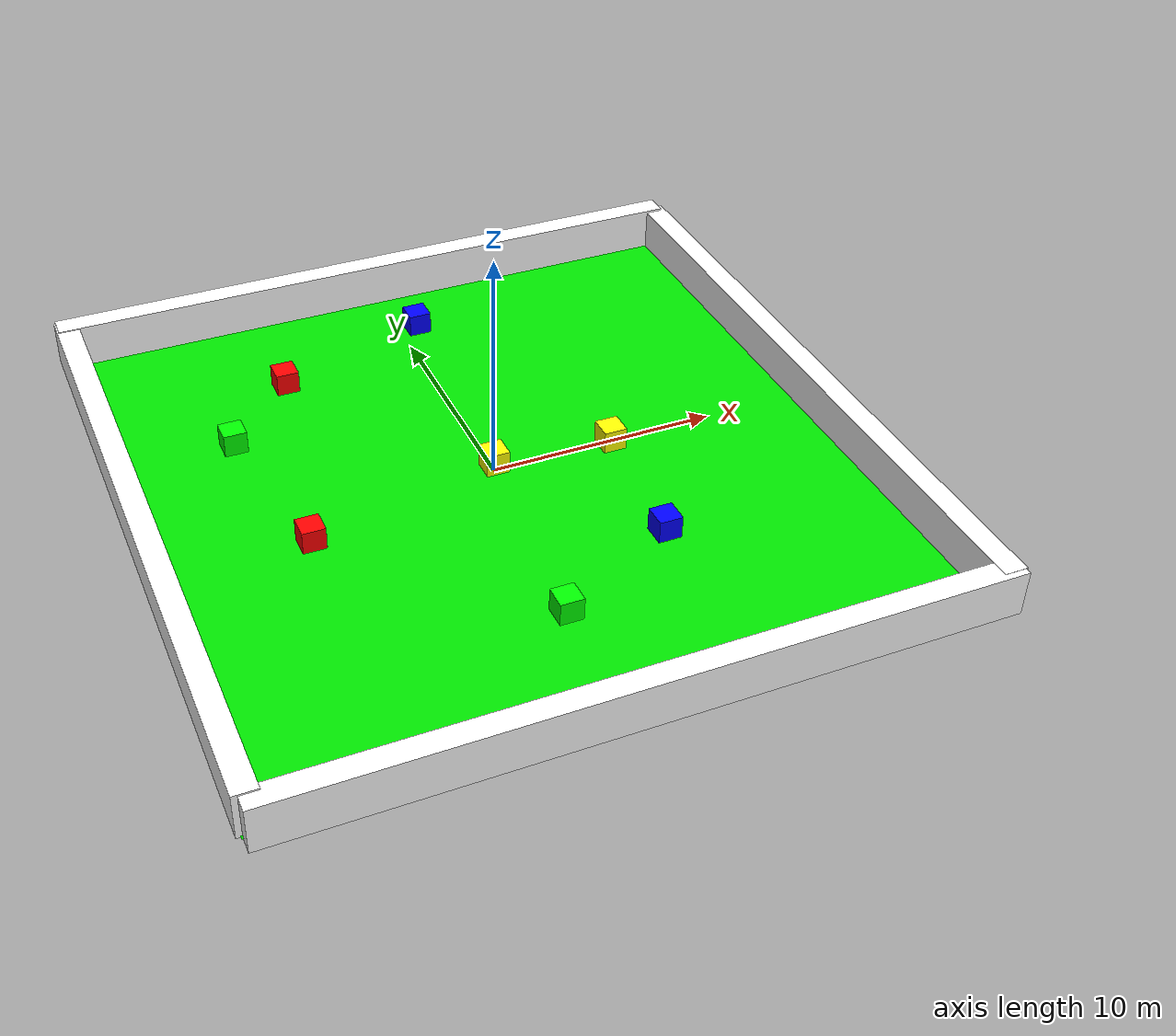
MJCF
<mujoco>
  <worldbody>
    <light diffuse=".5 .5 .5" pos="0 0 5" dir="0 0 -1" />
    <body pos="0 0 0" name="">
      <geom type="plane" size="15 15 3.330669E-16" euler="0 0 0" rgba="0 .9 0 1" />
    </body>
    <body pos="-0.0922308 14.83303 0.9230537" name="">
      <geom type="box" size="15 0.5 1" euler="0 0 0" rgba="255 255 255 1" name="border1" />
    </body>
    <body pos="0.06812 -15.01091 0.8197746" name="">
      <geom type="box" size="15 0.5 1" euler="0 0 0" rgba="255 255 255 1" name="border2"/>
    </body>
    <body pos="14.64551 -0.243706 0.8301067" name="">
      <geom type="box" size="0.5 15 1" euler="0 0 0" rgba="255 255 255 1" name="border3"/>
    </body>
    <body pos="-14.66974 0.1684961 0.885354" name="">
      <geom type="box" size="0.5 15 1" euler="0 0 0" rgba="255 255 255 1" name="border4"/>
    </body>
    <body pos="0 0 0.6168118" name="agent_1">
      <joint type="free" name="agent_1_freeJoint" />
      <camera name="agent_1_camera" pos="1 0 0" euler="90 0 0"/>
      <geom type="box" size="0.5 0.5 0.5" euler="0 0 0" rgba="255 255 0 1" name="agent1_geom" />
    </body>
    <body pos="5.169559 -0.371155 0.6309223" name="agent_2">
      <joint type="free" name="agent_2_freeJoint" />
      <camera name="agent_2_camera" pos="1 0 0" euler="90 0 0"/>
      <geom type="box" size="0.5 0.5 0.5" euler="0 0 0" rgba="255 255 0 1" />
    </body>
    <body pos="-6.309979 9.004034 0.5551147" name="target_1_1">
      <geom type="box" size="0.5 0.5 0.5" euler="0 0 0" rgba="255 0 0 1" name="target_1_1_geom" />
    </body>
    <body pos="-8.475098 -1.708575 0.527585" name="target_1_2">
      <geom type="box" size="0.5 0.5 0.5" euler="0 0 0" rgba="255 0 0 1" name="target_1_2_geom"/>
    </body>
    <body pos="-9.674165 5.350264 0.698823" name="target_2_1">
      <geom type="box" size="0.5 0.5 0.5" euler="0 0 0" rgba="0 255 0 1" name="target_2_1_geom"/>
    </body>
    <body pos="-0.9112439 -9.347561 0.6247292" name="target_2_2">
      <geom type="box" size="0.5 0.5 0.5" euler="0 0 0" rgba="0 255 0 1" name="target_2_2_geom"/>
    </body>
    <body pos="0.7537708 11.3133 0.5687752" name="target_3_1">
      <geom type="box" size="0.5 0.5 0.5" euler="0 0 0" rgba="0 0 255 1" name="target_3_1_geom"/>
    </body>
    <body pos="4.608235 -6.54546 0.672657" name="target_3_2">
      <geom type="box" size="0.5 0.5 0.5" euler="0 0 0" rgba="0 0 255 1" name="target_3_2_geom"/>
    </body>
  </worldbody>
  <sensor />
</mujoco>
